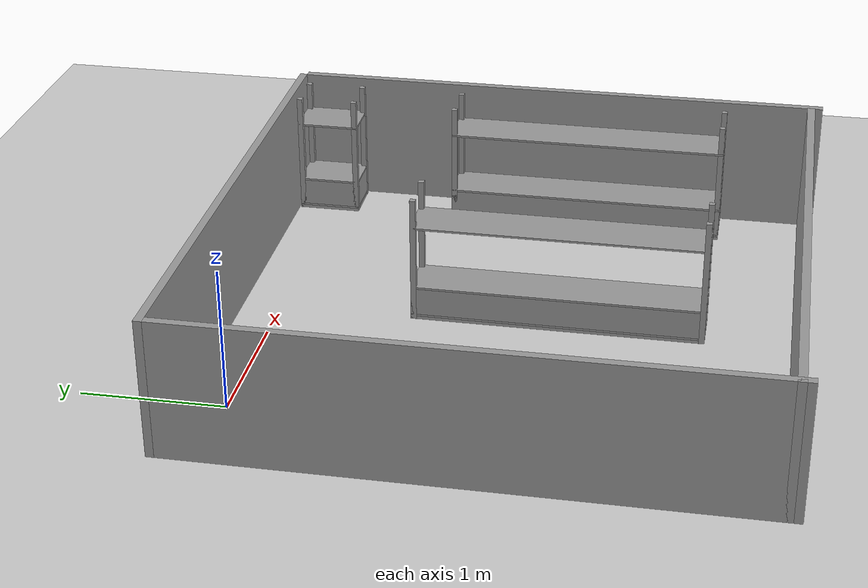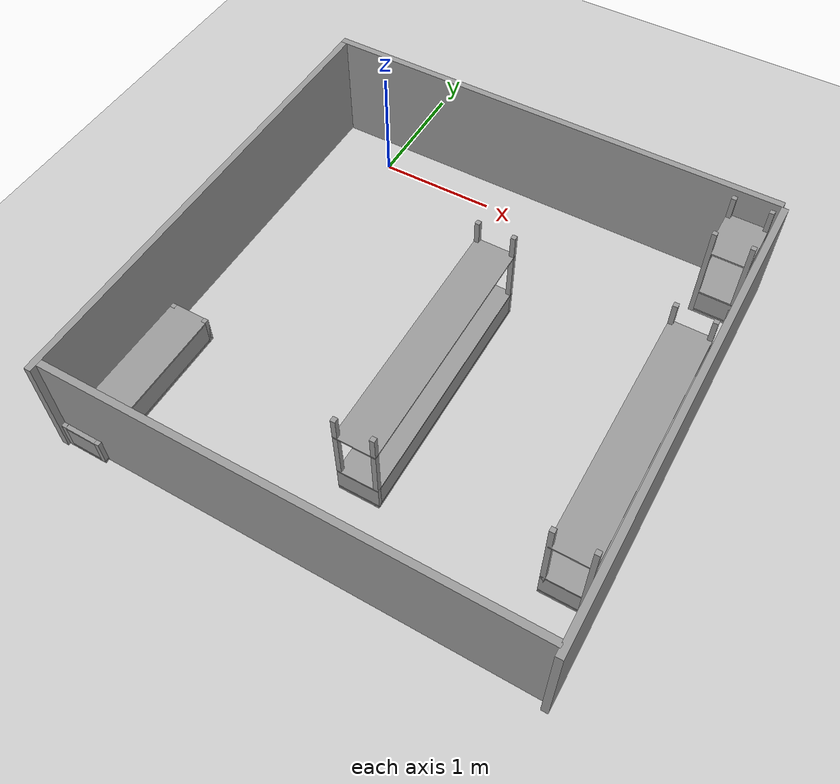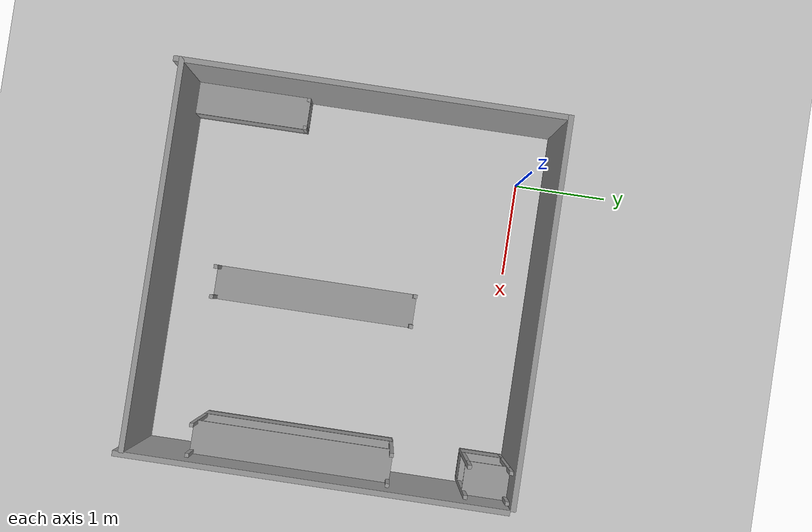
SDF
<sdf version="1.9">
 <world name="race_track">
  <model name="ground_plane">
   <static>true</static>
   <link name="link">
    <collision name="collision">
     <geometry><plane><normal>0 0 1</normal><size>100 100</size></plane></geometry>
    </collision>
    <visual name="visual">
     <geometry><plane><normal>0 0 1</normal><size>100 100</size></plane></geometry>
     <material>
      <ambient>0.8 0.8 0.8 1</ambient>
      <diffuse>0.8 0.8 0.8 1</diffuse>
      <specular>0.8 0.8 0.8 1</specular>
     </material>
    </visual>
   </link>
  </model>
  <model name="race_track">
   <static>true</static>
   <pose>-8 -2.5 -0.03 1.57079632679 0 1.57</pose>
   <link name="link">
    <collision name="platform_01_collision">
     <pose>2.540989 0.008750 7.616455 -1.570796 0 0</pose>
     <geometry><box><size>0.500000 0.500000 0.010000</size></box></geometry>
    </collision>
    <visual name="platform_01_visual">
     <pose>2.540989 0.008750 7.616455 -1.570796 0 0</pose>
     <geometry><box><size>0.500000 0.500000 0.010000</size></box></geometry>
     <material>
      <ambient>0.6 0.6 0.6 1</ambient>
      <diffuse>0.6 0.6 0.6 1</diffuse>
      <specular>0.1 0.1 0.1 1</specular>
     </material>
    </visual>
    <collision name="platform_02_collision">
     <pose>2.540989 0.007539 11.116455 -1.570796 0 0</pose>
     <geometry><box><size>0.500000 0.500000 0.010000</size></box></geometry>
    </collision>
    <visual name="platform_02_visual">
     <pose>2.540989 0.007539 11.116455 -1.570796 0 0</pose>
     <geometry><box><size>0.500000 0.500000 0.010000</size></box></geometry>
     <material>
      <ambient>0.6 0.6 0.6 1</ambient>
      <diffuse>0.6 0.6 0.6 1</diffuse>
      <specular>0.1 0.1 0.1 1</specular>
     </material>
    </visual>
    <collision name="rack_01_shelf_01_collision">
     <pose>0.531993 0.054556 9.547932 0 0 0</pose>
     <geometry><box><size>2.067200 0.014300 0.345600</size></box></geometry>
    </collision>
    <visual name="rack_01_shelf_01_visual">
     <pose>0.531993 0.054556 9.547932 0 0 0</pose>
     <geometry><box><size>2.067200 0.014300 0.345600</size></box></geometry>
     <material>
      <ambient>0.6 0.6 0.6 1</ambient>
      <diffuse>0.6 0.6 0.6 1</diffuse>
      <specular>0.1 0.1 0.1 1</specular>
     </material>
    </visual>
    <collision name="rack_01_shelf_02_collision">
     <pose>0.531993 0.268656 9.547932 0 0 0</pose>
     <geometry><box><size>2.067200 0.014300 0.345600</size></box></geometry>
    </collision>
    <visual name="rack_01_shelf_02_visual">
     <pose>0.531993 0.268656 9.547932 0 0 0</pose>
     <geometry><box><size>2.067200 0.014300 0.345600</size></box></geometry>
     <material>
      <ambient>0.6 0.6 0.6 1</ambient>
      <diffuse>0.6 0.6 0.6 1</diffuse>
      <specular>0.1 0.1 0.1 1</specular>
     </material>
    </visual>
    <collision name="rack_01_shelf_03_collision">
     <pose>0.531993 0.731356 9.547932 0 0 0</pose>
     <geometry><box><size>2.067200 0.014300 0.345600</size></box></geometry>
    </collision>
    <visual name="rack_01_shelf_03_visual">
     <pose>0.531993 0.731356 9.547932 0 0 0</pose>
     <geometry><box><size>2.067200 0.014300 0.345600</size></box></geometry>
     <material>
      <ambient>0.6 0.6 0.6 1</ambient>
      <diffuse>0.6 0.6 0.6 1</diffuse>
      <specular>0.1 0.1 0.1 1</specular>
     </material>
    </visual>
    <collision name="rack_01_fill_collision">
     <pose>0.531993 0.023703 9.547932 0 0 0</pose>
     <geometry><box><size>2.067200 0.047406 0.345600</size></box></geometry>
    </collision>
    <visual name="rack_01_fill_visual">
     <pose>0.531993 0.023703 9.547932 0 0 0</pose>
     <geometry><box><size>2.067200 0.047406 0.345600</size></box></geometry>
     <material>
      <ambient>0.6 0.6 0.6 1</ambient>
      <diffuse>0.6 0.6 0.6 1</diffuse>
      <specular>0.1 0.1 0.1 1</specular>
     </material>
    </visual>
    <collision name="rack_01_fill_02_collision">
     <pose>0.531993 0.161606 9.547932 0 0 0</pose>
     <geometry><box><size>2.067200 0.199800 0.345600</size></box></geometry>
    </collision>
    <visual name="rack_01_fill_02_visual">
     <pose>0.531993 0.161606 9.547932 0 0 0</pose>
     <geometry><box><size>2.067200 0.199800 0.345600</size></box></geometry>
     <material>
      <ambient>0.6 0.6 0.6 1</ambient>
      <diffuse>0.6 0.6 0.6 1</diffuse>
      <specular>0.1 0.1 0.1 1</specular>
     </material>
    </visual>
    <collision name="rack_01_post_01_collision">
     <pose>-0.481607 0.478906 9.395132 0 0 0</pose>
     <geometry><box><size>0.040000 0.932625 0.040000</size></box></geometry>
    </collision>
    <visual name="rack_01_post_01_visual">
     <pose>-0.481607 0.478906 9.395132 0 0 0</pose>
     <geometry><box><size>0.040000 0.932625 0.040000</size></box></geometry>
     <material>
      <ambient>0.6 0.6 0.6 1</ambient>
      <diffuse>0.6 0.6 0.6 1</diffuse>
      <specular>0.1 0.1 0.1 1</specular>
     </material>
    </visual>
    <collision name="rack_01_post_02_collision">
     <pose>-0.481607 0.478906 9.700732 0 0 0</pose>
     <geometry><box><size>0.040000 0.932625 0.040000</size></box></geometry>
    </collision>
    <visual name="rack_01_post_02_visual">
     <pose>-0.481607 0.478906 9.700732 0 0 0</pose>
     <geometry><box><size>0.040000 0.932625 0.040000</size></box></geometry>
     <material>
      <ambient>0.6 0.6 0.6 1</ambient>
      <diffuse>0.6 0.6 0.6 1</diffuse>
      <specular>0.1 0.1 0.1 1</specular>
     </material>
    </visual>
    <collision name="rack_01_post_03_collision">
     <pose>1.545593 0.478906 9.395132 0 0 0</pose>
     <geometry><box><size>0.040000 0.932625 0.040000</size></box></geometry>
    </collision>
    <visual name="rack_01_post_03_visual">
     <pose>1.545593 0.478906 9.395132 0 0 0</pose>
     <geometry><box><size>0.040000 0.932625 0.040000</size></box></geometry>
     <material>
      <ambient>0.6 0.6 0.6 1</ambient>
      <diffuse>0.6 0.6 0.6 1</diffuse>
      <specular>0.1 0.1 0.1 1</specular>
     </material>
    </visual>
    <collision name="rack_01_post_04_collision">
     <pose>1.545593 0.478906 9.700732 0 0 0</pose>
     <geometry><box><size>0.040000 0.932625 0.040000</size></box></geometry>
    </collision>
    <visual name="rack_01_post_04_visual">
     <pose>1.545593 0.478906 9.700732 0 0 0</pose>
     <geometry><box><size>0.040000 0.932625 0.040000</size></box></geometry>
     <material>
      <ambient>0.6 0.6 0.6 1</ambient>
      <diffuse>0.6 0.6 0.6 1</diffuse>
      <specular>0.1 0.1 0.1 1</specular>
     </material>
    </visual>
    <collision name="rack_02_shelf_01_collision">
     <pose>0.531993 0.054556 11.154176 0 0 0</pose>
     <geometry><box><size>2.067200 0.014300 0.345600</size></box></geometry>
    </collision>
    <visual name="rack_02_shelf_01_visual">
     <pose>0.531993 0.054556 11.154176 0 0 0</pose>
     <geometry><box><size>2.067200 0.014300 0.345600</size></box></geometry>
     <material>
      <ambient>0.6 0.6 0.6 1</ambient>
      <diffuse>0.6 0.6 0.6 1</diffuse>
      <specular>0.1 0.1 0.1 1</specular>
     </material>
    </visual>
    <collision name="rack_02_shelf_02_collision">
     <pose>0.531993 0.268656 11.154176 0 0 0</pose>
     <geometry><box><size>2.067200 0.014300 0.345600</size></box></geometry>
    </collision>
    <visual name="rack_02_shelf_02_visual">
     <pose>0.531993 0.268656 11.154176 0 0 0</pose>
     <geometry><box><size>2.067200 0.014300 0.345600</size></box></geometry>
     <material>
      <ambient>0.6 0.6 0.6 1</ambient>
      <diffuse>0.6 0.6 0.6 1</diffuse>
      <specular>0.1 0.1 0.1 1</specular>
     </material>
    </visual>
    <collision name="rack_02_shelf_03_collision">
     <pose>0.531993 0.731356 11.154176 0 0 0</pose>
     <geometry><box><size>2.067200 0.014300 0.345600</size></box></geometry>
    </collision>
    <visual name="rack_02_shelf_03_visual">
     <pose>0.531993 0.731356 11.154176 0 0 0</pose>
     <geometry><box><size>2.067200 0.014300 0.345600</size></box></geometry>
     <material>
      <ambient>0.6 0.6 0.6 1</ambient>
      <diffuse>0.6 0.6 0.6 1</diffuse>
      <specular>0.1 0.1 0.1 1</specular>
     </material>
    </visual>
    <collision name="rack_02_fill_collision">
     <pose>0.531993 0.023703 11.154176 0 0 0</pose>
     <geometry><box><size>2.067200 0.047406 0.345600</size></box></geometry>
    </collision>
    <visual name="rack_02_fill_visual">
     <pose>0.531993 0.023703 11.154176 0 0 0</pose>
     <geometry><box><size>2.067200 0.047406 0.345600</size></box></geometry>
     <material>
      <ambient>0.6 0.6 0.6 1</ambient>
      <diffuse>0.6 0.6 0.6 1</diffuse>
      <specular>0.1 0.1 0.1 1</specular>
     </material>
    </visual>
    <collision name="rack_02_fill_02_collision">
     <pose>0.531993 0.161606 11.154176 0 0 0</pose>
     <geometry><box><size>2.067200 0.199800 0.345600</size></box></geometry>
    </collision>
    <visual name="rack_02_fill_02_visual">
     <pose>0.531993 0.161606 11.154176 0 0 0</pose>
     <geometry><box><size>2.067200 0.199800 0.345600</size></box></geometry>
     <material>
      <ambient>0.6 0.6 0.6 1</ambient>
      <diffuse>0.6 0.6 0.6 1</diffuse>
      <specular>0.1 0.1 0.1 1</specular>
     </material>
    </visual>
    <collision name="rack_02_post_01_collision">
     <pose>-0.481607 0.478906 11.001376 0 0 0</pose>
     <geometry><box><size>0.040000 0.932625 0.040000</size></box></geometry>
    </collision>
    <visual name="rack_02_post_01_visual">
     <pose>-0.481607 0.478906 11.001376 0 0 0</pose>
     <geometry><box><size>0.040000 0.932625 0.040000</size></box></geometry>
     <material>
      <ambient>0.6 0.6 0.6 1</ambient>
      <diffuse>0.6 0.6 0.6 1</diffuse>
      <specular>0.1 0.1 0.1 1</specular>
     </material>
    </visual>
    <collision name="rack_02_post_02_collision">
     <pose>-0.481607 0.478906 11.306976 0 0 0</pose>
     <geometry><box><size>0.040000 0.932625 0.040000</size></box></geometry>
    </collision>
    <visual name="rack_02_post_02_visual">
     <pose>-0.481607 0.478906 11.306976 0 0 0</pose>
     <geometry><box><size>0.040000 0.932625 0.040000</size></box></geometry>
     <material>
      <ambient>0.6 0.6 0.6 1</ambient>
      <diffuse>0.6 0.6 0.6 1</diffuse>
      <specular>0.1 0.1 0.1 1</specular>
     </material>
    </visual>
    <collision name="rack_02_post_03_collision">
     <pose>1.545593 0.478906 11.001376 0 0 0</pose>
     <geometry><box><size>0.040000 0.932625 0.040000</size></box></geometry>
    </collision>
    <visual name="rack_02_post_03_visual">
     <pose>1.545593 0.478906 11.001376 0 0 0</pose>
     <geometry><box><size>0.040000 0.932625 0.040000</size></box></geometry>
     <material>
      <ambient>0.6 0.6 0.6 1</ambient>
      <diffuse>0.6 0.6 0.6 1</diffuse>
      <specular>0.1 0.1 0.1 1</specular>
     </material>
    </visual>
    <collision name="rack_02_post_04_collision">
     <pose>1.545593 0.478906 11.306976 0 0 0</pose>
     <geometry><box><size>0.040000 0.932625 0.040000</size></box></geometry>
    </collision>
    <visual name="rack_02_post_04_visual">
     <pose>1.545593 0.478906 11.306976 0 0 0</pose>
     <geometry><box><size>0.040000 0.932625 0.040000</size></box></geometry>
     <material>
      <ambient>0.6 0.6 0.6 1</ambient>
      <diffuse>0.6 0.6 0.6 1</diffuse>
      <specular>0.1 0.1 0.1 1</specular>
     </material>
    </visual>
    <collision name="rack_03_shelf_01_collision">
     <pose>2.547930 0.054556 11.154176 0 0 0</pose>
     <geometry><box><size>0.463929 0.014300 0.345600</size></box></geometry>
    </collision>
    <visual name="rack_03_shelf_01_visual">
     <pose>2.547930 0.054556 11.154176 0 0 0</pose>
     <geometry><box><size>0.463929 0.014300 0.345600</size></box></geometry>
     <material>
      <ambient>0.6 0.6 0.6 1</ambient>
      <diffuse>0.6 0.6 0.6 1</diffuse>
      <specular>0.1 0.1 0.1 1</specular>
     </material>
    </visual>
    <collision name="rack_03_shelf_02_collision">
     <pose>2.547930 0.268656 11.154176 0 0 0</pose>
     <geometry><box><size>0.463929 0.014300 0.345600</size></box></geometry>
    </collision>
    <visual name="rack_03_shelf_02_visual">
     <pose>2.547930 0.268656 11.154176 0 0 0</pose>
     <geometry><box><size>0.463929 0.014300 0.345600</size></box></geometry>
     <material>
      <ambient>0.6 0.6 0.6 1</ambient>
      <diffuse>0.6 0.6 0.6 1</diffuse>
      <specular>0.1 0.1 0.1 1</specular>
     </material>
    </visual>
    <collision name="rack_03_shelf_03_collision">
     <pose>2.547930 0.731356 11.154176 0 0 0</pose>
     <geometry><box><size>0.463929 0.014300 0.345600</size></box></geometry>
    </collision>
    <visual name="rack_03_shelf_03_visual">
     <pose>2.547930 0.731356 11.154176 0 0 0</pose>
     <geometry><box><size>0.463929 0.014300 0.345600</size></box></geometry>
     <material>
      <ambient>0.6 0.6 0.6 1</ambient>
      <diffuse>0.6 0.6 0.6 1</diffuse>
      <specular>0.1 0.1 0.1 1</specular>
     </material>
    </visual>
    <collision name="rack_03_fill_collision">
     <pose>2.547930 0.023703 11.154176 0 0 0</pose>
     <geometry><box><size>0.463929 0.047406 0.345600</size></box></geometry>
    </collision>
    <visual name="rack_03_fill_visual">
     <pose>2.547930 0.023703 11.154176 0 0 0</pose>
     <geometry><box><size>0.463929 0.047406 0.345600</size></box></geometry>
     <material>
      <ambient>0.6 0.6 0.6 1</ambient>
      <diffuse>0.6 0.6 0.6 1</diffuse>
      <specular>0.1 0.1 0.1 1</specular>
     </material>
    </visual>
    <collision name="rack_03_fill_02_collision">
     <pose>2.547930 0.161606 11.154176 0 0 0</pose>
     <geometry><box><size>0.463929 0.199800 0.345600</size></box></geometry>
    </collision>
    <visual name="rack_03_fill_02_visual">
     <pose>2.547930 0.161606 11.154176 0 0 0</pose>
     <geometry><box><size>0.463929 0.199800 0.345600</size></box></geometry>
     <material>
      <ambient>0.6 0.6 0.6 1</ambient>
      <diffuse>0.6 0.6 0.6 1</diffuse>
      <specular>0.1 0.1 0.1 1</specular>
     </material>
    </visual>
    <collision name="rack_03_post_01_collision">
     <pose>2.335965 0.478906 11.001376 0 0 0</pose>
     <geometry><box><size>0.040000 0.932625 0.040000</size></box></geometry>
    </collision>
    <visual name="rack_03_post_01_visual">
     <pose>2.335965 0.478906 11.001376 0 0 0</pose>
     <geometry><box><size>0.040000 0.932625 0.040000</size></box></geometry>
     <material>
      <ambient>0.6 0.6 0.6 1</ambient>
      <diffuse>0.6 0.6 0.6 1</diffuse>
      <specular>0.1 0.1 0.1 1</specular>
     </material>
    </visual>
    <collision name="rack_03_post_02_collision">
     <pose>2.335965 0.478906 11.306976 0 0 0</pose>
     <geometry><box><size>0.040000 0.932625 0.040000</size></box></geometry>
    </collision>
    <visual name="rack_03_post_02_visual">
     <pose>2.335965 0.478906 11.306976 0 0 0</pose>
     <geometry><box><size>0.040000 0.932625 0.040000</size></box></geometry>
     <material>
      <ambient>0.6 0.6 0.6 1</ambient>
      <diffuse>0.6 0.6 0.6 1</diffuse>
      <specular>0.1 0.1 0.1 1</specular>
     </material>
    </visual>
    <collision name="rack_03_post_03_collision">
     <pose>2.759895 0.478906 11.001376 0 0 0</pose>
     <geometry><box><size>0.040000 0.932625 0.040000</size></box></geometry>
    </collision>
    <visual name="rack_03_post_03_visual">
     <pose>2.759895 0.478906 11.001376 0 0 0</pose>
     <geometry><box><size>0.040000 0.932625 0.040000</size></box></geometry>
     <material>
      <ambient>0.6 0.6 0.6 1</ambient>
      <diffuse>0.6 0.6 0.6 1</diffuse>
      <specular>0.1 0.1 0.1 1</specular>
     </material>
    </visual>
    <collision name="rack_03_post_04_collision">
     <pose>2.759895 0.478906 11.306976 0 0 0</pose>
     <geometry><box><size>0.040000 0.932625 0.040000</size></box></geometry>
    </collision>
    <visual name="rack_03_post_04_visual">
     <pose>2.759895 0.478906 11.306976 0 0 0</pose>
     <geometry><box><size>0.040000 0.932625 0.040000</size></box></geometry>
     <material>
      <ambient>0.6 0.6 0.6 1</ambient>
      <diffuse>0.6 0.6 0.6 1</diffuse>
      <specular>0.1 0.1 0.1 1</specular>
     </material>
    </visual>
    <collision name="platform_03_collision">
     <pose>0.405022 0.008750 7.616455 -1.570796 0 0</pose>
     <geometry><box><size>0.500000 0.500000 0.010000</size></box></geometry>
    </collision>
    <visual name="platform_03_visual">
     <pose>0.405022 0.008750 7.616455 -1.570796 0 0</pose>
     <geometry><box><size>0.500000 0.500000 0.010000</size></box></geometry>
     <material>
      <ambient>0.6 0.6 0.6 1</ambient>
      <diffuse>0.6 0.6 0.6 1</diffuse>
      <specular>0.1 0.1 0.1 1</specular>
     </material>
    </visual>
    <collision name="rack_04_shelf_01_collision">
     <pose>-0.530136 0.049762 7.595416 0 0 0</pose>
     <geometry><box><size>1.317174 0.014300 0.345600</size></box></geometry>
    </collision>
    <visual name="rack_04_shelf_01_visual">
     <pose>-0.530136 0.049762 7.595416 0 0 0</pose>
     <geometry><box><size>1.317174 0.014300 0.345600</size></box></geometry>
     <material>
      <ambient>0.6 0.6 0.6 1</ambient>
      <diffuse>0.6 0.6 0.6 1</diffuse>
      <specular>0.1 0.1 0.1 1</specular>
     </material>
    </visual>
    <collision name="rack_04_shelf_02_collision">
     <pose>-0.530136 0.263862 7.595416 0 0 0</pose>
     <geometry><box><size>1.317174 0.014300 0.345600</size></box></geometry>
    </collision>
    <visual name="rack_04_shelf_02_visual">
     <pose>-0.530136 0.263862 7.595416 0 0 0</pose>
     <geometry><box><size>1.317174 0.014300 0.345600</size></box></geometry>
     <material>
      <ambient>0.6 0.6 0.6 1</ambient>
      <diffuse>0.6 0.6 0.6 1</diffuse>
      <specular>0.1 0.1 0.1 1</specular>
     </material>
    </visual>
    <collision name="rack_04_fill_collision">
     <pose>-0.530136 0.021306 7.595416 0 0 0</pose>
     <geometry><box><size>1.317174 0.042612 0.345600</size></box></geometry>
    </collision>
    <visual name="rack_04_fill_visual">
     <pose>-0.530136 0.021306 7.595416 0 0 0</pose>
     <geometry><box><size>1.317174 0.042612 0.345600</size></box></geometry>
     <material>
      <ambient>0.6 0.6 0.6 1</ambient>
      <diffuse>0.6 0.6 0.6 1</diffuse>
      <specular>0.1 0.1 0.1 1</specular>
     </material>
    </visual>
    <collision name="rack_04_fill_02_collision">
     <pose>-0.530136 0.156812 7.595416 0 0 0</pose>
     <geometry><box><size>1.317174 0.199800 0.345600</size></box></geometry>
    </collision>
    <visual name="rack_04_fill_02_visual">
     <pose>-0.530136 0.156812 7.595416 0 0 0</pose>
     <geometry><box><size>1.317174 0.199800 0.345600</size></box></geometry>
     <material>
      <ambient>0.6 0.6 0.6 1</ambient>
      <diffuse>0.6 0.6 0.6 1</diffuse>
      <specular>0.1 0.1 0.1 1</specular>
     </material>
    </visual>
    <collision name="rack_04_post_01_collision">
     <pose>-1.168723 0.140412 7.442616 0 0 0</pose>
     <geometry><box><size>0.040000 0.265160 0.040000</size></box></geometry>
    </collision>
    <visual name="rack_04_post_01_visual">
     <pose>-1.168723 0.140412 7.442616 0 0 0</pose>
     <geometry><box><size>0.040000 0.265160 0.040000</size></box></geometry>
     <material>
      <ambient>0.6 0.6 0.6 1</ambient>
      <diffuse>0.6 0.6 0.6 1</diffuse>
      <specular>0.1 0.1 0.1 1</specular>
     </material>
    </visual>
    <collision name="rack_04_post_02_collision">
     <pose>-1.168723 0.140412 7.748216 0 0 0</pose>
     <geometry><box><size>0.040000 0.265160 0.040000</size></box></geometry>
    </collision>
    <visual name="rack_04_post_02_visual">
     <pose>-1.168723 0.140412 7.748216 0 0 0</pose>
     <geometry><box><size>0.040000 0.265160 0.040000</size></box></geometry>
     <material>
      <ambient>0.6 0.6 0.6 1</ambient>
      <diffuse>0.6 0.6 0.6 1</diffuse>
      <specular>0.1 0.1 0.1 1</specular>
     </material>
    </visual>
    <collision name="rack_04_post_03_collision">
     <pose>0.108451 0.140412 7.442616 0 0 0</pose>
     <geometry><box><size>0.040000 0.265160 0.040000</size></box></geometry>
    </collision>
    <visual name="rack_04_post_03_visual">
     <pose>0.108451 0.140412 7.442616 0 0 0</pose>
     <geometry><box><size>0.040000 0.265160 0.040000</size></box></geometry>
     <material>
      <ambient>0.6 0.6 0.6 1</ambient>
      <diffuse>0.6 0.6 0.6 1</diffuse>
      <specular>0.1 0.1 0.1 1</specular>
     </material>
    </visual>
    <collision name="rack_04_post_04_collision">
     <pose>0.108451 0.140412 7.748216 0 0 0</pose>
     <geometry><box><size>0.040000 0.265160 0.040000</size></box></geometry>
    </collision>
    <visual name="rack_04_post_04_visual">
     <pose>0.108451 0.140412 7.748216 0 0 0</pose>
     <geometry><box><size>0.040000 0.265160 0.040000</size></box></geometry>
     <material>
      <ambient>0.6 0.6 0.6 1</ambient>
      <diffuse>0.6 0.6 0.6 1</diffuse>
      <specular>0.1 0.1 0.1 1</specular>
     </material>
    </visual>
    <collision name="wall_west_collision">
     <pose>-1.123848 0.500000 9.366455 0 -1.570796 0</pose>
     <geometry><box><size>4.000000 1.000000 0.056775</size></box></geometry>
    </collision>
    <visual name="wall_west_visual">
     <pose>-1.123848 0.500000 9.366455 0 -1.570796 0</pose>
     <geometry><box><size>4.000000 1.000000 0.056775</size></box></geometry>
     <material>
      <ambient>0.6 0.6 0.6 1</ambient>
      <diffuse>0.6 0.6 0.6 1</diffuse>
      <specular>0.1 0.1 0.1 1</specular>
     </material>
    </visual>
    <collision name="wall_north_collision">
     <pose>0.790989 0.500000 11.383706 0 0 0</pose>
     <geometry><box><size>4.000000 1.000000 0.056775</size></box></geometry>
    </collision>
    <visual name="wall_north_visual">
     <pose>0.790989 0.500000 11.383706 0 0 0</pose>
     <geometry><box><size>4.000000 1.000000 0.056775</size></box></geometry>
     <material>
      <ambient>0.6 0.6 0.6 1</ambient>
      <diffuse>0.6 0.6 0.6 1</diffuse>
      <specular>0.1 0.1 0.1 1</specular>
     </material>
    </visual>
    <collision name="wall_south_collision">
     <pose>0.790989 0.500000 7.394843 0 0 0</pose>
     <geometry><box><size>4.000000 1.000000 0.056775</size></box></geometry>
    </collision>
    <visual name="wall_south_visual">
     <pose>0.790989 0.500000 7.394843 0 0 0</pose>
     <geometry><box><size>4.000000 1.000000 0.056775</size></box></geometry>
     <material>
      <ambient>0.6 0.6 0.6 1</ambient>
      <diffuse>0.6 0.6 0.6 1</diffuse>
      <specular>0.1 0.1 0.1 1</specular>
     </material>
    </visual>
    <collision name="wall_east_collision">
     <pose>2.819376 0.500000 9.366455 0 -1.570796 0</pose>
     <geometry><box><size>4.000000 1.000000 0.056775</size></box></geometry>
    </collision>
    <visual name="wall_east_visual">
     <pose>2.819376 0.500000 9.366455 0 -1.570796 0</pose>
     <geometry><box><size>4.000000 1.000000 0.056775</size></box></geometry>
     <material>
      <ambient>0.6 0.6 0.6 1</ambient>
      <diffuse>0.6 0.6 0.6 1</diffuse>
      <specular>0.1 0.1 0.1 1</specular>
     </material>
    </visual>
   </link>
  </model>
 </world>
</sdf>
